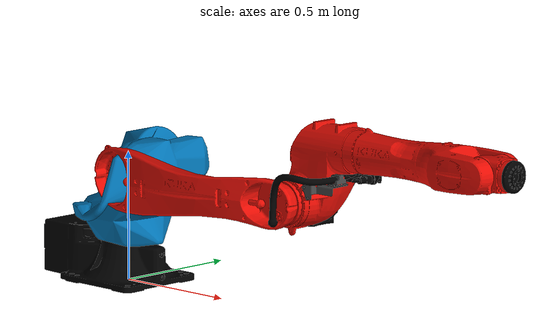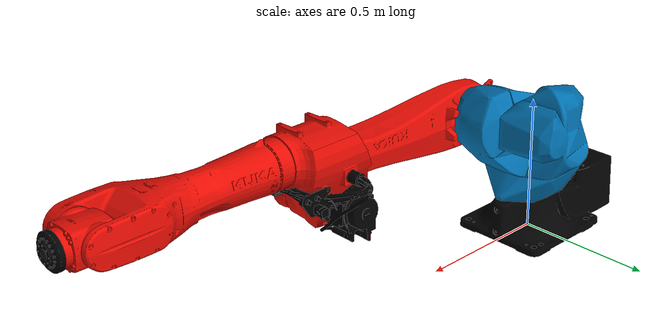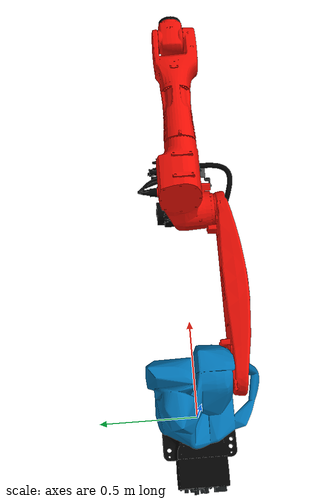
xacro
<?xml version="1.0" encoding="UTF-8"?>
<robot xmlns:xacro="http://www.ros.org/wiki/xacro" name="kr35_r1840_3">
  <!-- Import urdf files  -->
  <xacro:include filename="$(find kuka_cybertech_support)/urdf/kr35_r1840_3_macro.xacro"/>
  <xacro:include filename="$(find kuka_cybertech_support)/urdf/kr_cybertech_ros2_control_macro.xacro"/>
  <!-- Basic arguments  -->
  <xacro:arg name="prefix" default=""/>
  <xacro:arg name="x" default="0"/>
  <xacro:arg name="y" default="0"/>
  <xacro:arg name="z" default="0"/>
  <xacro:arg name="roll" default="0"/>
  <xacro:arg name="pitch" default="0"/>
  <xacro:arg name="yaw" default="0"/>
  <!-- kroshu-specific arguments -->
  <xacro:arg name="driver_version" default="rsi_only"/>
  <xacro:arg name="mode" default="hardware"/>
  <xacro:arg name="gpio_config" default=""/>
  <xacro:arg name="roundtrip_time" default="0"/>
  <xacro:arg name="client_ip" default="0.0.0.0"/>
  <xacro:arg name="client_port" default="59152"/>
  <xacro:arg name="mxa_client_port" default="1337"/>
  <xacro:arg name="controller_ip" default="0.0.0.0"/>
  <xacro:arg name="verify_robot_model" default="true"/>
  <xacro:arg name="rsi_xml_config_file" default=""/>
  <xacro:kuka_cybertech_ros2_control name="$(arg prefix)kr35_r1840_3" driver_version="$(arg driver_version)" client_ip="$(arg client_ip)" client_port="$(arg client_port)" mxa_client_port="$(arg mxa_client_port)" controller_ip="$(arg controller_ip)" prefix="$(arg prefix)" mode="$(arg mode)" gpio_config="$(arg gpio_config)" roundtrip_time="$(arg roundtrip_time)" verify_robot_model="$(arg verify_robot_model)" rsi_xml_config_file="$(arg rsi_xml_config_file)">
    <ext_axes_ros2_control_joints/>
  </xacro:kuka_cybertech_ros2_control>
  <!-- world link -->
  <link name="world"/>
  <!-- robot links, joints -->
  <xacro:kuka_kr35_r1840_3_robot prefix="$(arg prefix)" package_name="kuka_cybertech_support"/>
  <!-- default world - base_link joint -->
  <joint name="$(arg prefix)world-base_link" type="fixed">
    <parent link="world"/>
    <child link="$(arg prefix)base_link"/>
    <origin xyz="$(arg x) $(arg y) $(arg z)" rpy="$(arg roll) $(arg pitch) $(arg yaw)"/>
  </joint>
</robot>

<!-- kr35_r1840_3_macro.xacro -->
<robot xmlns:xacro="http://www.ros.org/wiki/xacro" name="kr35_r1840_3">
  <xacro:macro name="kuka_kr35_r1840_3_robot" params="prefix package_name">
    <link name="${prefix}base"/>
    <link name="${prefix}base_link">
      <collision>
        <geometry>
          <mesh filename="package://${package_name}/meshes/kr35_r1840_3/collision/base_link.stl"/>
        </geometry>
        <origin rpy="0.0 0.0 0.0" xyz="0.0 0.0 0.0"/>
      </collision>
      <inertial>
        <inertia ixx="0.826710070988791" ixy="0.0" ixz="0.0" iyy="1.0532984395003224" iyz="0.0" izz="1.067619390604537"/>
        <mass value="53.7647"/>
        <origin rpy="-0.11961611134062222 -0.42159909518503985 0.010576198109219125" xyz="-0.008719211676062546 6.228008340044944e-05 0.15051911477233204"/>
      </inertial>
      <visual>
        <geometry>
          <mesh filename="package://${package_name}/meshes/kr35_r1840_3/visual/base_link.dae"/>
        </geometry>
        <origin rpy="0.0 0.0 0.0" xyz="0.0 0.0 0.0"/>
      </visual>
    </link>
    <link name="${prefix}flange"/>
    <link name="${prefix}link_1">
      <collision>
        <geometry>
          <mesh filename="package://${package_name}/meshes/kr35_r1840_3/collision/link_1.stl"/>
        </geometry>
        <origin rpy="-3.141592653589793 0.0 -0.0" xyz="0.0 -3.230618256150718e-17 0.26380000000000003"/>
      </collision>
      <inertial>
        <inertia ixx="1.6285403569639783" ixy="0.0" ixz="0.0" iyy="1.4877270664190467" iyz="0.0" izz="1.8642117225205757"/>
        <mass value="80.4493"/>
        <origin rpy="0.8537721535557681 0.022005971969584058 -0.10879820835414042" xyz="0.07188038137435628 -0.016802880660614826 -0.10462612809309717"/>
      </inertial>
      <visual>
        <geometry>
          <mesh filename="package://${package_name}/meshes/kr35_r1840_3/visual/link_1.dae"/>
        </geometry>
        <origin rpy="-3.141592653589793 0.0 -0.0" xyz="0.0 -3.230618256150718e-17 0.26380000000000003"/>
      </visual>
    </link>
    <link name="${prefix}link_2">
      <collision>
        <geometry>
          <mesh filename="package://${package_name}/meshes/kr35_r1840_3/collision/link_2.stl"/>
        </geometry>
        <origin rpy="1.5707963267948968 -0.0 1.5707963267948966" xyz="-0.4435 -0.14999999999999997 0.09350000000000006"/>
      </collision>
      <inertial>
        <inertia ixx="5.990584233250293" ixy="0.0" ixz="0.0" iyy="0.34530965276037384" iyz="0.0" izz="6.011098848186622"/>
        <mass value="52.727"/>
        <origin rpy="-2.951425235526265 -1.434485219505217 1.3845578560014196" xyz="0.3027597431107403 -0.00047416346463861024 -0.06954389582187494"/>
      </inertial>
      <visual>
        <geometry>
          <mesh filename="package://${package_name}/meshes/kr35_r1840_3/visual/link_2.dae"/>
        </geometry>
        <origin rpy="1.5707963267948968 -0.0 1.5707963267948966" xyz="-0.4435 -0.14999999999999997 0.09350000000000006"/>
      </visual>
    </link>
    <link name="${prefix}link_3">
      <collision>
        <geometry>
          <mesh filename="package://${package_name}/meshes/kr35_r1840_3/collision/link_3.stl"/>
        </geometry>
        <origin rpy="1.5707963267948968 -0.0 -0.0" xyz="-0.15000000000000005 1.2535 0.11600000000000006"/>
      </collision>
      <inertial>
        <inertia ixx="0.4974243390382361" ixy="0.0" ixz="0.0" iyy="0.32576933651969064" iyz="0.0" izz="0.5622373834234723"/>
        <mass value="27.59"/>
        <origin rpy="0.037732777962820145 -0.02940058083119093 0.6595562252414644" xyz="0.06770450163102573 -0.08802276187024283 0.11704065241029357"/>
      </inertial>
      <visual>
        <geometry>
          <mesh filename="package://${package_name}/meshes/kr35_r1840_3/visual/link_3.dae"/>
        </geometry>
        <origin rpy="1.5707963267948968 -0.0 -0.0" xyz="-0.15000000000000005 1.2535 0.11600000000000006"/>
      </visual>
    </link>
    <link name="${prefix}link_4">
      <collision>
        <geometry>
          <mesh filename="package://${package_name}/meshes/kr35_r1840_3/collision/link_4.stl"/>
        </geometry>
        <origin rpy="1.8369701987210297e-16 1.5707963267948966 0.0" xyz="-1.4535 4.1272685305357456e-17 0.40049999999999997"/>
      </collision>
      <inertial>
        <inertia ixx="0.09682453053126969" ixy="0.0" ixz="0.0" iyy="1.1534905704703602" iyz="0.0" izz="1.2001978373206632"/>
        <mass value="19.30786595"/>
        <origin rpy="-1.5969028419067555 -1.5485383264943322 1.5975910120910959" xyz="-1.882215323102508e-05 -0.012673690107133255 -0.3225673931176687"/>
      </inertial>
      <visual>
        <geometry>
          <mesh filename="package://${package_name}/meshes/kr35_r1840_3/visual/link_4.dae"/>
        </geometry>
        <origin rpy="1.8369701987210297e-16 1.5707963267948966 0.0" xyz="-1.4535 4.1272685305357456e-17 0.40049999999999997"/>
      </visual>
    </link>
    <link name="${prefix}link_5">
      <collision>
        <geometry>
          <mesh filename="package://${package_name}/meshes/kr35_r1840_3/collision/link_5.stl"/>
        </geometry>
        <origin rpy="1.5707963267948968 -3.749399456654644e-33 -6.123233995736766e-17" xyz="-1.0070000000000001 1.4535 0.049499999999999995"/>
      </collision>
      <inertial>
        <inertia ixx="0.014395888638908765" ixy="0.0" ixz="0.0" iyy="0.010252446978569082" iyz="0.0" izz="0.01674384028854491"/>
        <mass value="5.5500757"/>
        <origin rpy="1.5977908832144863 -1.2685189921157871 3.1152412103316185" xyz="0.017857759674049126 -9.437825467137315e-05 0.035238033473116416"/>
      </inertial>
      <visual>
        <geometry>
          <mesh filename="package://${package_name}/meshes/kr35_r1840_3/visual/link_5.dae"/>
        </geometry>
        <origin rpy="1.5707963267948968 -3.749399456654644e-33 -6.123233995736766e-17" xyz="-1.0070000000000001 1.4535 0.049499999999999995"/>
      </visual>
    </link>
    <link name="${prefix}link_6">
      <collision>
        <geometry>
          <mesh filename="package://${package_name}/meshes/kr35_r1840_3/collision/link_6.stl"/>
        </geometry>
        <origin rpy="1.2246467991473532e-16 1.5707963267948966 0.0" xyz="-1.4535000000000002 -6.235184769154167e-17 1.0926"/>
      </collision>
      <inertial>
        <inertia ixx="0.0011203865985731955" ixy="0.0" ixz="0.0" iyy="0.0011201081050673189" iyz="0.0" izz="0.001862149736562073"/>
        <mass value="1.4417"/>
        <origin rpy="0.0002129007352367484 -0.00010819698363763766 1.8061329689424754" xyz="1.1783602691267255e-05 -2.815551085524035e-06 -0.01959819019213429"/>
      </inertial>
      <visual>
        <geometry>
          <mesh filename="package://${package_name}/meshes/kr35_r1840_3/visual/link_6.dae"/>
        </geometry>
        <origin rpy="1.2246467991473532e-16 1.5707963267948966 0.0" xyz="-1.4535000000000002 -6.235184769154167e-17 1.0926"/>
      </visual>
    </link>
    <link name="${prefix}tool0"/>
    <joint name="${prefix}base_link-base" type="fixed">
      <child link="${prefix}base"/>
      <origin rpy="0.0 0.0 0.0" xyz="0.0 0.0 0.0"/>
      <parent link="${prefix}base_link"/>
    </joint>
    <joint name="${prefix}joint_1" type="revolute">
      <axis xyz="0.0 0.0 1.0"/>
      <child link="${prefix}link_1"/>
      <limit effort="1920.0" lower="-3.2288591161895095" upper="3.2288591161895095" velocity="3.141592653589793"/>
      <origin rpy="3.141592653589793 0.0 0.0" xyz="0.0 0.0 0.26380000000000003"/>
      <parent link="${prefix}base_link"/>
    </joint>
    <joint name="${prefix}joint_2" type="revolute">
      <axis xyz="0.0 0.0 1.0"/>
      <child link="${prefix}link_2"/>
      <limit effort="1718.4401419395226" lower="-3.2288591161895095" upper="1.1344640137963142" velocity="3.141592653589793"/>
      <origin rpy="1.5707963267948966 0.0 0.0" xyz="0.15 0.0935 -0.1797"/>
      <parent link="${prefix}link_1"/>
    </joint>
    <joint name="${prefix}joint_3" type="revolute">
      <axis xyz="0.0 0.0 1.0"/>
      <child link="${prefix}link_3"/>
      <limit effort="688.567010870269" lower="-2.0943951023931953" upper="3.1066860685499065" velocity="3.490658503988659"/>
      <origin rpy="0.0 0.0 0.0" xyz="0.81 0.0 -0.0225"/>
      <parent link="${prefix}link_2"/>
    </joint>
    <joint name="${prefix}joint_4" type="revolute">
      <axis xyz="0.0 0.0 1.0"/>
      <child link="${prefix}link_4"/>
      <limit effort="252.02227341089431" lower="-3.141592653589793" upper="3.141592653589793" velocity="6.981317007977318"/>
      <origin rpy="1.5707963267948966 0.0 -1.5707963267948966" xyz="0.2505 -0.2 0.116"/>
      <parent link="${prefix}link_3"/>
    </joint>
    <joint name="${prefix}joint_5" type="revolute">
      <axis xyz="0.0 0.0 1.0"/>
      <child link="${prefix}link_5"/>
      <limit effort="182.7441770928834" lower="-2.129301687433082" upper="2.129301687433082" velocity="6.806784082777885"/>
      <origin rpy="0.0 1.5707963267948966 1.5707963267948966" xyz="0.0 -0.0495 -0.6065"/>
      <parent link="${prefix}link_4"/>
    </joint>
    <joint name="${prefix}joint_6" type="revolute">
      <axis xyz="0.0 0.0 1.0"/>
      <child link="${prefix}link_6"/>
      <limit effort="86.0436543199055" lower="-6.2482787221397" upper="6.2482787221397" velocity="7.3303828583761845"/>
      <origin rpy="1.5707963267948966 0.0 -1.5707963267948966" xyz="0.0856 0.0 0.0495"/>
      <parent link="${prefix}link_5"/>
    </joint>
    <joint name="${prefix}link_6-flange" type="fixed">
      <child link="${prefix}flange"/>
      <origin rpy="0.0 1.5707963267948966 0.0" xyz="0.0 0.0 -0.0414"/>
      <parent link="${prefix}link_6"/>
    </joint>
    <joint name="${prefix}link_6-tool0" type="fixed">
      <child link="${prefix}tool0"/>
      <origin rpy="3.141592653589793 0.0 3.141592653589793" xyz="0.0 0.0 -0.0414"/>
      <parent link="${prefix}link_6"/>
    </joint>
  </xacro:macro>
</robot>
